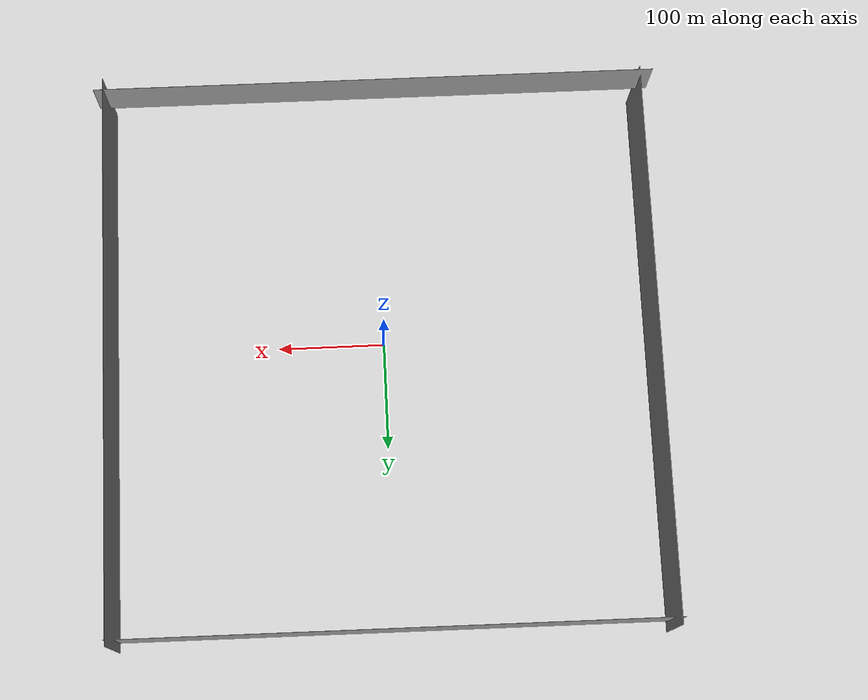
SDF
<sdf version="1.6">
 <world name="default">
  <scene><ambient>0.4 0.4 0.4 1</ambient><background>0.25 0.25 0.25 1</background><shadows>0</shadows></scene>
  <light name="some_light" type="directional">
   <diffuse>0.7 0.7 0.7 0</diffuse>
   <specular>1 1 1 0</specular>
   <direction>-1 -1 -1</direction>
  </light>
  <gravity>0 0 -9.8</gravity>
  <magnetic_field>6e-06 2.3e-05 -4.2e-05</magnetic_field>
  <atmosphere type="adiabatic"/>
  <physics name="default_physics" default="0" type="ode">
   <max_step_size>0.01</max_step_size>
   <real_time_factor>1</real_time_factor>
   <real_time_update_rate>100</real_time_update_rate>
  </physics>
  <spherical_coordinates>
   <surface_model>EARTH_WGS84</surface_model>
   <latitude_deg>0</latitude_deg>
   <longitude_deg>0</longitude_deg>
   <elevation>0</elevation>
   <heading_deg>0</heading_deg>
  </spherical_coordinates>
  <audio><device>default</device></audio>
  <model name="grey_wall">
   <static>1</static>
   <link name="link">
    <pose>0 0 1.4 0 -0 0</pose>
    <collision name="collision"><geometry><box><size>550 0.2 50</size></box></geometry></collision>
    <visual name="visual">
     <cast_shadows>0</cast_shadows>
     <geometry><box><size>550 0.2 50</size></box></geometry>
     <material>
      <script>
       <uri>model://grey_wall/materials/scripts</uri>
       <uri>model://grey_wall/materials/textures</uri>
       <name>vrc/grey_wall</name>
      </script>
     </material>
    </visual>
   </link>
   <pose>0 265 -60 0 -0 0</pose>
  </model>
  <model name="grey_wall_clone">
   <static>1</static>
   <link name="link">
    <pose>0 0 1.4 0 -0 0</pose>
    <collision name="collision"><geometry><box><size>550 0.2 50</size></box></geometry></collision>
    <visual name="visual">
     <cast_shadows>0</cast_shadows>
     <geometry><box><size>550 0.2 50</size></box></geometry>
     <material>
      <script>
       <uri>model://grey_wall/materials/scripts</uri>
       <uri>model://grey_wall/materials/textures</uri>
       <name>vrc/grey_wall</name>
      </script>
     </material>
    </visual>
   </link>
   <pose>0 -265 -10 0 -0 0</pose>
  </model>
  <model name="grey_wall_clone_0">
   <static>1</static>
   <link name="link">
    <pose>0 0 1.4 0 -0 0</pose>
    <collision name="collision"><geometry><box><size>550 0.2 100</size></box></geometry></collision>
    <visual name="visual">
     <cast_shadows>0</cast_shadows>
     <geometry><box><size>550 0.2 100</size></box></geometry>
     <material>
      <script>
       <uri>model://grey_wall/materials/scripts</uri>
       <uri>model://grey_wall/materials/textures</uri>
       <name>vrc/grey_wall</name>
      </script>
     </material>
    </visual>
   </link>
   <pose>-265 0 -50 0 -0 1.5707</pose>
  </model>
  <model name="grey_wall_clone_0_clone">
   <static>1</static>
   <link name="link">
    <pose>0 0 1.4 0 -0 0</pose>
    <collision name="collision"><geometry><box><size>550 0.2 100</size></box></geometry></collision>
    <visual name="visual">
     <cast_shadows>0</cast_shadows>
     <geometry><box><size>550 0.2 100</size></box></geometry>
     <material>
      <script>
       <uri>model://grey_wall/materials/scripts</uri>
       <uri>model://grey_wall/materials/textures</uri>
       <name>vrc/grey_wall</name>
      </script>
     </material>
    </visual>
   </link>
   <pose>265 0 -30 0 -0 1.5707</pose>
  </model>
  <model name="aruco_marker_5x5_1000-0">
   <static>1</static>
   <link name="link">
    <visual name="visual">
     <geometry>
      <mesh><uri>model://aruco_marker_5x5_1000-0/meshes/aruco_marker_5x5_1000-0.dae</uri><scale>1 1 1</scale></mesh>
     </geometry>
    </visual>
   </link>
   <pose>0.294775 18.912260 -66.0768 0 -0 -1.747104</pose>
  </model>
 </world>
</sdf>
